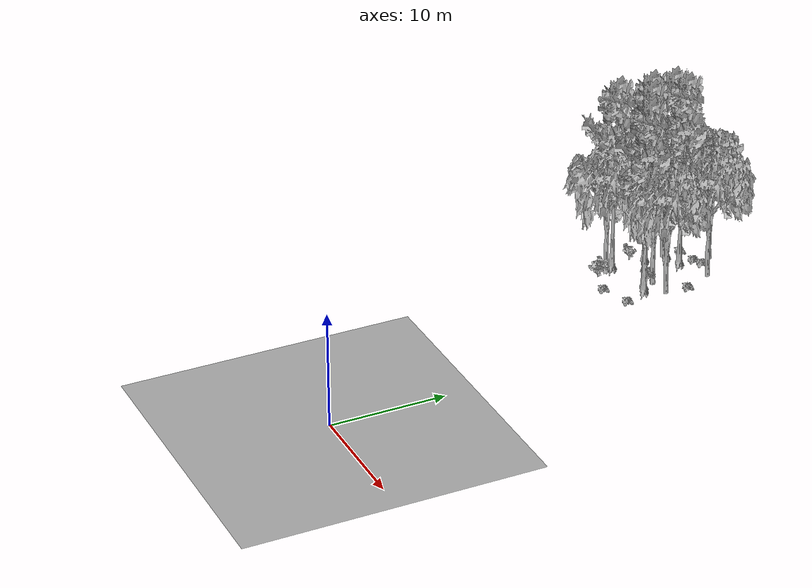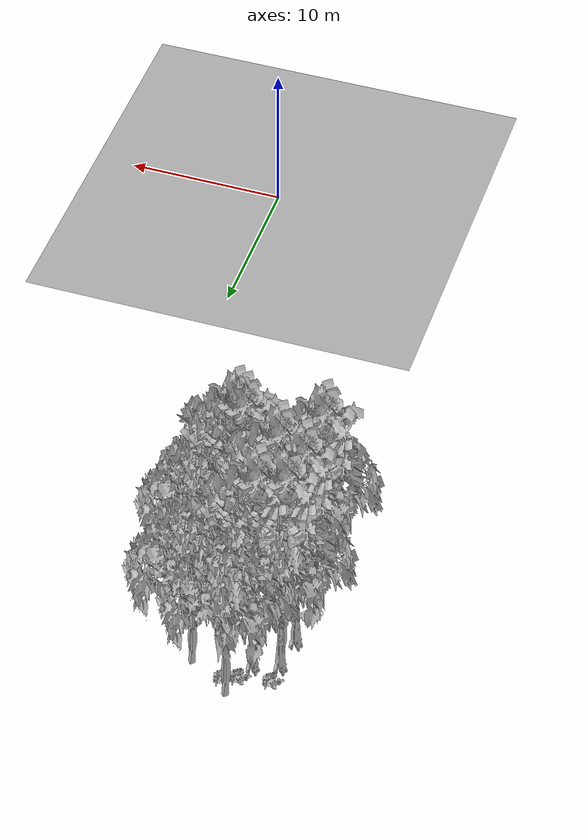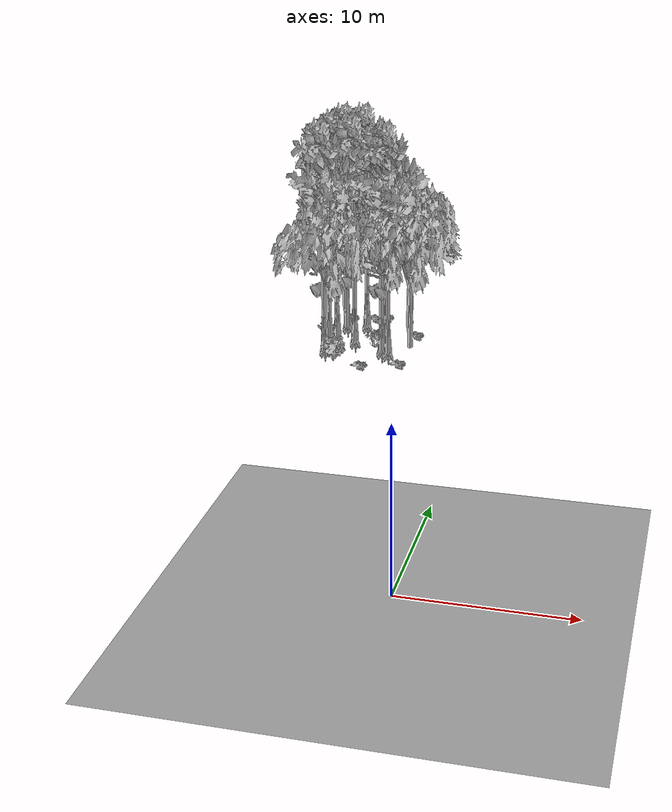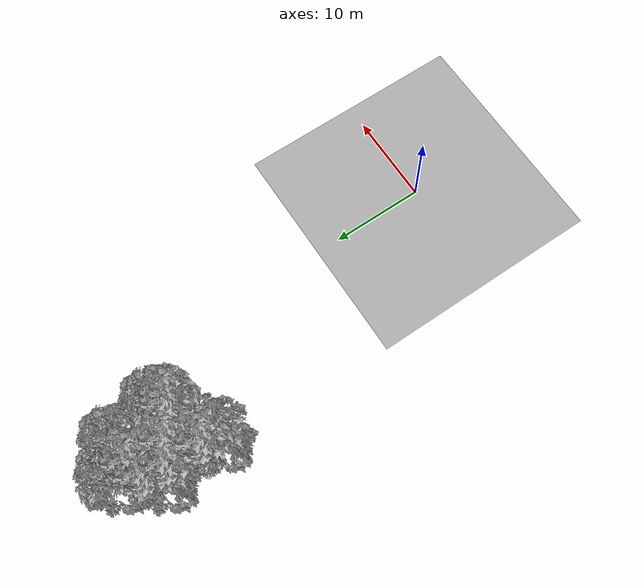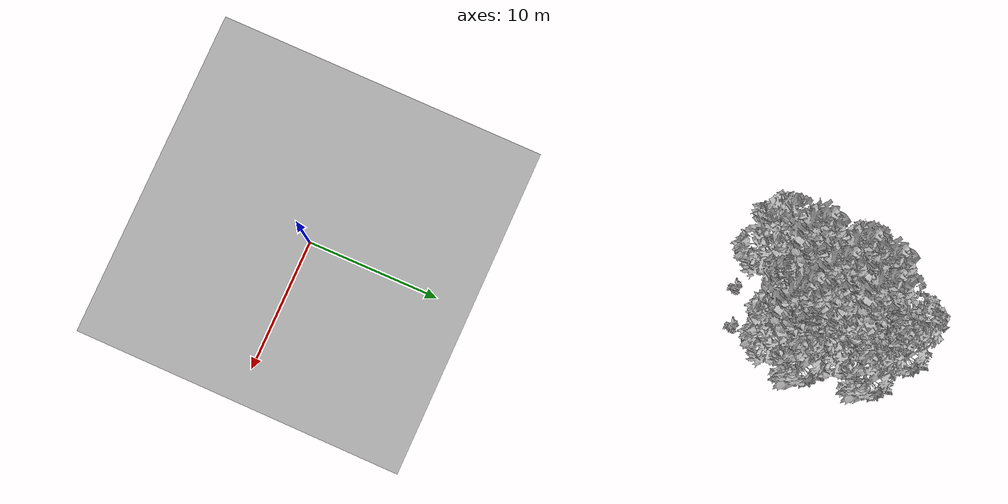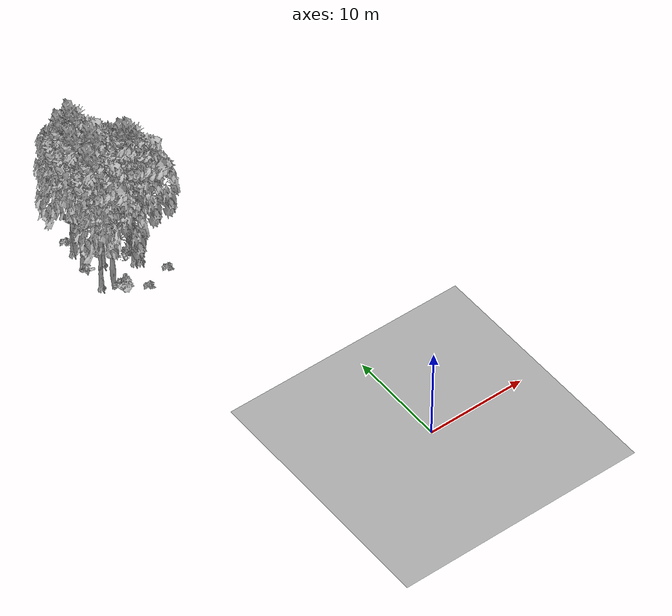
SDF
<sdf version="1.7">
 <world name="default">
  <model name="ground_plane">
   <static>1</static>
   <link name="link">
    <collision name="collision">
     <pose>-50 0 0 0 -0 0</pose>
     <geometry><plane><normal>0 0 1</normal><size>80 80</size></plane></geometry>
     <surface><contact><ode><min_depth>0.01</min_depth><max_vel>0</max_vel></ode></contact></surface>
    </collision>
    <visual name="grass">
     <cast_shadows>0</cast_shadows>
     <geometry>
      <mesh>
       <scale>0.46714285714285714 0.46714285714285714 0.1</scale>
       <uri>file://grass_plane/meshes/grass_plane.dae</uri>
      </mesh>
     </geometry>
    </visual>
   </link>
  </model>
  <model name="Tree 4">
   <static>1</static>
   <pose>-12.686489410339071 35.04230845025239 0 1.57079 -0 0</pose>
   <link name="link">
    <collision name="collision">
     <geometry><mesh><scale>3.5 5 3.5</scale><uri>model://tree_9/meshes/tree_9.obj</uri></mesh></geometry>
    </collision>
    <visual name="visual">
     <geometry><mesh><scale>3.5 5 3.5</scale><uri>model://tree_9/meshes/tree_9.obj</uri></mesh></geometry>
    </visual>
   </link>
  </model>
  <model name="Tree 12">
   <static>1</static>
   <pose>-12.201571156416641 30.999647327010763 0 1.57079 -0 0</pose>
   <link name="link">
    <collision name="collision">
     <geometry><mesh><scale>3.5 5 3.5</scale><uri>model://tree_2/meshes/tree_2.obj</uri></mesh></geometry>
    </collision>
    <visual name="visual">
     <geometry><mesh><scale>3.5 5 3.5</scale><uri>model://tree_2/meshes/tree_2.obj</uri></mesh></geometry>
    </visual>
   </link>
  </model>
  <model name="Tree 68">
   <static>1</static>
   <pose>-12.455589874519674 36.61804556540005 0 1.57079 -0 0</pose>
   <link name="link">
    <collision name="collision">
     <geometry><mesh><scale>3.5 5 3.5</scale><uri>model://tree_2/meshes/tree_2.obj</uri></mesh></geometry>
    </collision>
    <visual name="visual">
     <geometry><mesh><scale>3.5 5 3.5</scale><uri>model://tree_2/meshes/tree_2.obj</uri></mesh></geometry>
    </visual>
   </link>
  </model>
  <model name="Tree 163">
   <static>1</static>
   <pose>-10.3117253674898 39.95988775705571 0 1.57079 -0 0</pose>
   <link name="link">
    <collision name="collision">
     <geometry><mesh><scale>3.5 5 3.5</scale><uri>model://tree_2/meshes/tree_2.obj</uri></mesh></geometry>
    </collision>
    <visual name="visual">
     <geometry><mesh><scale>3.5 5 3.5</scale><uri>model://tree_2/meshes/tree_2.obj</uri></mesh></geometry>
    </visual>
   </link>
  </model>
  <model name="Tree 182">
   <static>1</static>
   <pose>-10.958504968571923 37.47991791465495 0 1.57079 -0 0</pose>
   <link name="link">
    <collision name="collision">
     <geometry><mesh><scale>3.5 5 3.5</scale><uri>model://tree_9/meshes/tree_9.obj</uri></mesh></geometry>
    </collision>
    <visual name="visual">
     <geometry><mesh><scale>3.5 5 3.5</scale><uri>model://tree_9/meshes/tree_9.obj</uri></mesh></geometry>
    </visual>
   </link>
  </model>
  <model name="Tree 290">
   <static>1</static>
   <pose>-11.068938862962337 34.167911647819 0 1.57079 -0 0</pose>
   <link name="link">
    <collision name="collision">
     <geometry><mesh><scale>3.5 5 3.5</scale><uri>model://tree_9/meshes/tree_9.obj</uri></mesh></geometry>
    </collision>
    <visual name="visual">
     <geometry><mesh><scale>3.5 5 3.5</scale><uri>model://tree_9/meshes/tree_9.obj</uri></mesh></geometry>
    </visual>
   </link>
  </model>
  <model name="Tree 313">
   <static>1</static>
   <pose>-8.608355206381429 33.52118215562581 0 1.57079 -0 0</pose>
   <link name="link">
    <collision name="collision">
     <geometry><mesh><scale>3.5 5 3.5</scale><uri>model://tree_2/meshes/tree_2.obj</uri></mesh></geometry>
    </collision>
    <visual name="visual">
     <geometry><mesh><scale>3.5 5 3.5</scale><uri>model://tree_2/meshes/tree_2.obj</uri></mesh></geometry>
    </visual>
   </link>
  </model>
  <model name="Tree 427">
   <static>1</static>
   <pose>-12.824172617697513 31.95091727899819 0 1.57079 -0 0</pose>
   <link name="link">
    <collision name="collision">
     <geometry><mesh><scale>3.5 5 3.5</scale><uri>model://tree_9/meshes/tree_9.obj</uri></mesh></geometry>
    </collision>
    <visual name="visual">
     <geometry><mesh><scale>3.5 5 3.5</scale><uri>model://tree_9/meshes/tree_9.obj</uri></mesh></geometry>
    </visual>
   </link>
  </model>
  <model name="Tree 454">
   <static>1</static>
   <pose>-12.424291466105483 37.00527503894219 0 1.57079 -0 0</pose>
   <link name="link">
    <collision name="collision">
     <geometry><mesh><scale>3.5 5 3.5</scale><uri>model://tree_9/meshes/tree_9.obj</uri></mesh></geometry>
    </collision>
    <visual name="visual">
     <geometry><mesh><scale>3.5 5 3.5</scale><uri>model://tree_9/meshes/tree_9.obj</uri></mesh></geometry>
    </visual>
   </link>
  </model>
  <model name="Tree 479">
   <static>1</static>
   <pose>-6.7938611331776215 33.767726038907696 0 1.57079 -0 0</pose>
   <link name="link">
    <collision name="collision">
     <geometry><mesh><scale>3.5 5 3.5</scale><uri>model://tree_2/meshes/tree_2.obj</uri></mesh></geometry>
    </collision>
    <visual name="visual">
     <geometry><mesh><scale>3.5 5 3.5</scale><uri>model://tree_2/meshes/tree_2.obj</uri></mesh></geometry>
    </visual>
   </link>
  </model>
  <model name="Tree 506">
   <static>1</static>
   <pose>-8.634475228212882 32.71345621263066 0 1.57079 -0 0</pose>
   <link name="link">
    <collision name="collision">
     <geometry><mesh><scale>3.5 5 3.5</scale><uri>model://tree_9/meshes/tree_9.obj</uri></mesh></geometry>
    </collision>
    <visual name="visual">
     <geometry><mesh><scale>3.5 5 3.5</scale><uri>model://tree_9/meshes/tree_9.obj</uri></mesh></geometry>
    </visual>
   </link>
  </model>
  <model name="Tree 585">
   <static>1</static>
   <pose>-7.8054157460580065 38.35536485483672 0 1.57079 -0 0</pose>
   <link name="link">
    <collision name="collision">
     <geometry><mesh><scale>3.5 5 3.5</scale><uri>model://tree_2/meshes/tree_2.obj</uri></mesh></geometry>
    </collision>
    <visual name="visual">
     <geometry><mesh><scale>3.5 5 3.5</scale><uri>model://tree_2/meshes/tree_2.obj</uri></mesh></geometry>
    </visual>
   </link>
  </model>
  <model name="Tree 592">
   <static>1</static>
   <pose>-8.08664724367781 32.43893699779166 0 1.57079 -0 0</pose>
   <link name="link">
    <collision name="collision">
     <geometry><mesh><scale>3.5 5 3.5</scale><uri>model://tree_9/meshes/tree_9.obj</uri></mesh></geometry>
    </collision>
    <visual name="visual">
     <geometry><mesh><scale>3.5 5 3.5</scale><uri>model://tree_9/meshes/tree_9.obj</uri></mesh></geometry>
    </visual>
   </link>
  </model>
  <model name="Bush 230">
   <static>1</static>
   <pose>-12.396684895527816 38.30761998733669 0 1.57079 -0 0</pose>
   <link name="link">
    <collision name="collision">
     <geometry><mesh><scale>2 2 2</scale><uri>model://bush_2/meshes/bush_2.obj</uri></mesh></geometry>
     <surface><contact><collide_without_contact>false</collide_without_contact></contact></surface>
    </collision>
    <visual name="visual">
     <geometry><mesh><scale>2 2 2</scale><uri>model://bush_2/meshes/bush_2.obj</uri></mesh></geometry>
    </visual>
   </link>
  </model>
  <model name="Bush 231">
   <static>1</static>
   <pose>-6.775248825993874 30.126503738644175 0 1.57079 -0 0</pose>
   <link name="link">
    <collision name="collision">
     <geometry><mesh><scale>2 2 2</scale><uri>model://bush_2/meshes/bush_2.obj</uri></mesh></geometry>
     <surface><contact><collide_without_contact>false</collide_without_contact></contact></surface>
    </collision>
    <visual name="visual">
     <geometry><mesh><scale>2 2 2</scale><uri>model://bush_2/meshes/bush_2.obj</uri></mesh></geometry>
    </visual>
   </link>
  </model>
  <model name="Bush 250">
   <static>1</static>
   <pose>-8.594254667773132 33.38482051382344 0 1.57079 -0 0</pose>
   <link name="link">
    <collision name="collision">
     <geometry><mesh><scale>2 2 2</scale><uri>model://bush_5/meshes/bush_5.obj</uri></mesh></geometry>
     <surface><contact><collide_without_contact>false</collide_without_contact></contact></surface>
    </collision>
    <visual name="visual">
     <geometry><mesh><scale>2 2 2</scale><uri>model://bush_5/meshes/bush_5.obj</uri></mesh></geometry>
    </visual>
   </link>
  </model>
  <model name="Bush 282">
   <static>1</static>
   <pose>-10.56879262759512 38.598889951301686 0 1.57079 -0 0</pose>
   <link name="link">
    <collision name="collision">
     <geometry><mesh><scale>2 2 2</scale><uri>model://bush_2/meshes/bush_2.obj</uri></mesh></geometry>
     <surface><contact><collide_without_contact>false</collide_without_contact></contact></surface>
    </collision>
    <visual name="visual">
     <geometry><mesh><scale>2 2 2</scale><uri>model://bush_2/meshes/bush_2.obj</uri></mesh></geometry>
    </visual>
   </link>
  </model>
  <model name="Bush 290">
   <static>1</static>
   <pose>-6.676401016418261 35.84875780951634 0 1.57079 -0 0</pose>
   <link name="link">
    <collision name="collision">
     <geometry><mesh><scale>2 2 2</scale><uri>model://bush_2/meshes/bush_2.obj</uri></mesh></geometry>
     <surface><contact><collide_without_contact>false</collide_without_contact></contact></surface>
    </collision>
    <visual name="visual">
     <geometry><mesh><scale>2 2 2</scale><uri>model://bush_2/meshes/bush_2.obj</uri></mesh></geometry>
    </visual>
   </link>
  </model>
  <model name="Bush 292">
   <static>1</static>
   <pose>-9.259334897612288 33.2325018088535 0 1.57079 -0 0</pose>
   <link name="link">
    <collision name="collision">
     <geometry><mesh><scale>2 2 2</scale><uri>model://bush_4/meshes/bush_4.obj</uri></mesh></geometry>
     <surface><contact><collide_without_contact>false</collide_without_contact></contact></surface>
    </collision>
    <visual name="visual">
     <geometry><mesh><scale>2 2 2</scale><uri>model://bush_4/meshes/bush_4.obj</uri></mesh></geometry>
    </visual>
   </link>
  </model>
  <model name="Bush 356">
   <static>1</static>
   <pose>-9.745679186863875 38.94709226747396 0 1.57079 -0 0</pose>
   <link name="link">
    <collision name="collision">
     <geometry><mesh><scale>2 2 2</scale><uri>model://bush_2/meshes/bush_2.obj</uri></mesh></geometry>
     <surface><contact><collide_without_contact>false</collide_without_contact></contact></surface>
    </collision>
    <visual name="visual">
     <geometry><mesh><scale>2 2 2</scale><uri>model://bush_2/meshes/bush_2.obj</uri></mesh></geometry>
    </visual>
   </link>
  </model>
  <model name="Bush 479">
   <static>1</static>
   <pose>-9.451238591813468 29.276694834253846 0 1.57079 -0 0</pose>
   <link name="link">
    <collision name="collision">
     <geometry><mesh><scale>2 2 2</scale><uri>model://bush_2/meshes/bush_2.obj</uri></mesh></geometry>
     <surface><contact><collide_without_contact>false</collide_without_contact></contact></surface>
    </collision>
    <visual name="visual">
     <geometry><mesh><scale>2 2 2</scale><uri>model://bush_2/meshes/bush_2.obj</uri></mesh></geometry>
    </visual>
   </link>
  </model>
  <model name="Bush 504">
   <static>1</static>
   <pose>-13.033920149663757 33.77388543404105 0 1.57079 -0 0</pose>
   <link name="link">
    <collision name="collision">
     <geometry><mesh><scale>2 2 2</scale><uri>model://bush_0/meshes/bush_0.obj</uri></mesh></geometry>
     <surface><contact><collide_without_contact>false</collide_without_contact></contact></surface>
    </collision>
    <visual name="visual">
     <geometry><mesh><scale>2 2 2</scale><uri>model://bush_0/meshes/bush_0.obj</uri></mesh></geometry>
    </visual>
   </link>
  </model>
  <model name="Bush 614">
   <static>1</static>
   <pose>-11.600835502100942 29.94857322088491 0 1.57079 -0 0</pose>
   <link name="link">
    <collision name="collision">
     <geometry><mesh><scale>2 2 2</scale><uri>model://bush_1/meshes/bush_1.obj</uri></mesh></geometry>
     <surface><contact><collide_without_contact>false</collide_without_contact></contact></surface>
    </collision>
    <visual name="visual">
     <geometry><mesh><scale>2 2 2</scale><uri>model://bush_1/meshes/bush_1.obj</uri></mesh></geometry>
    </visual>
   </link>
  </model>
 </world>
</sdf>
